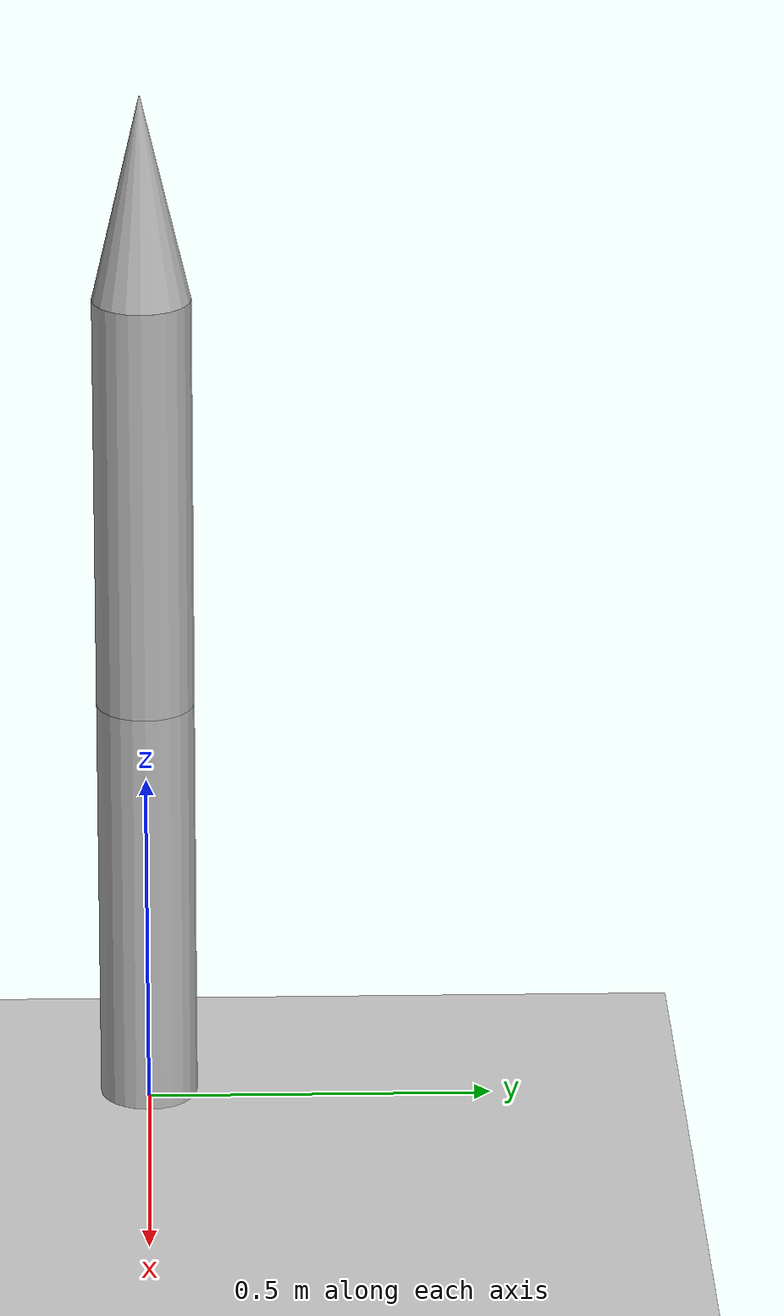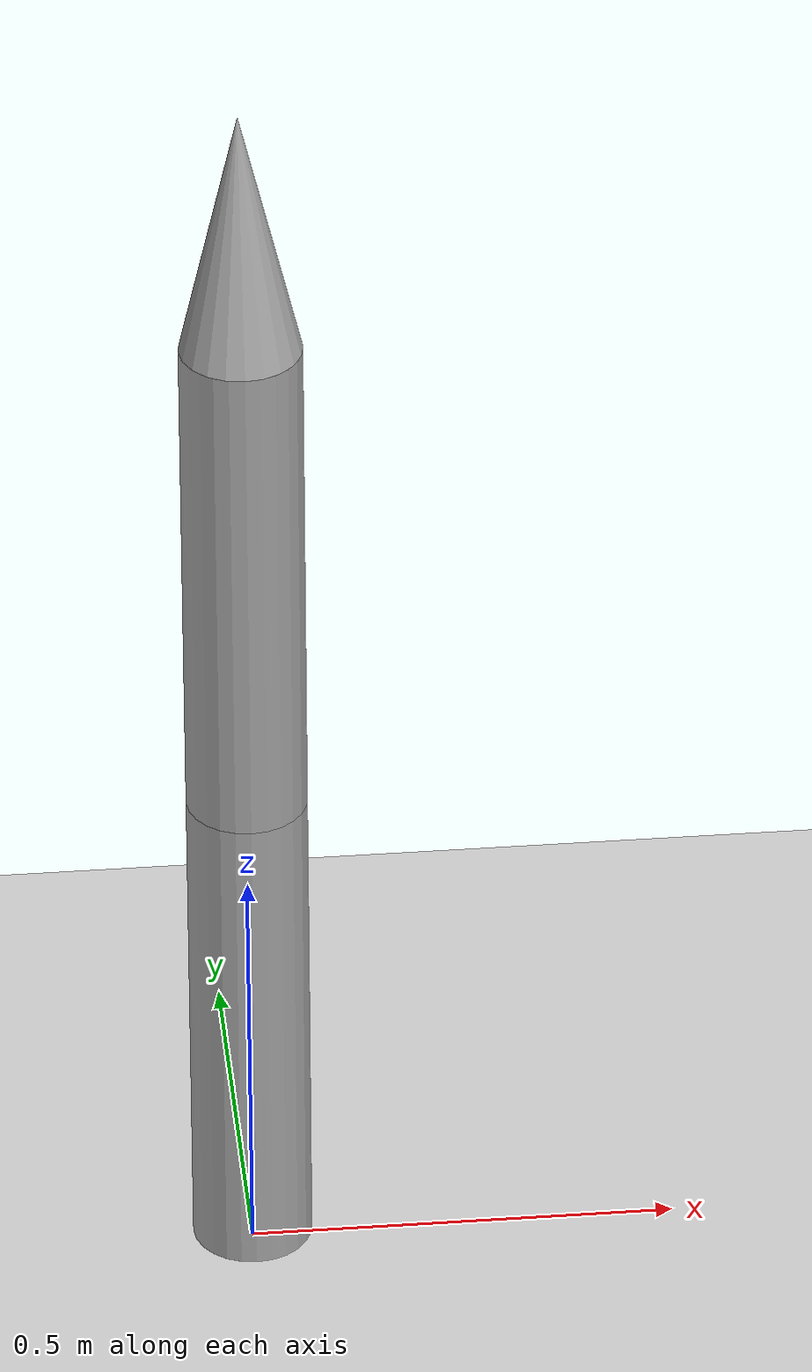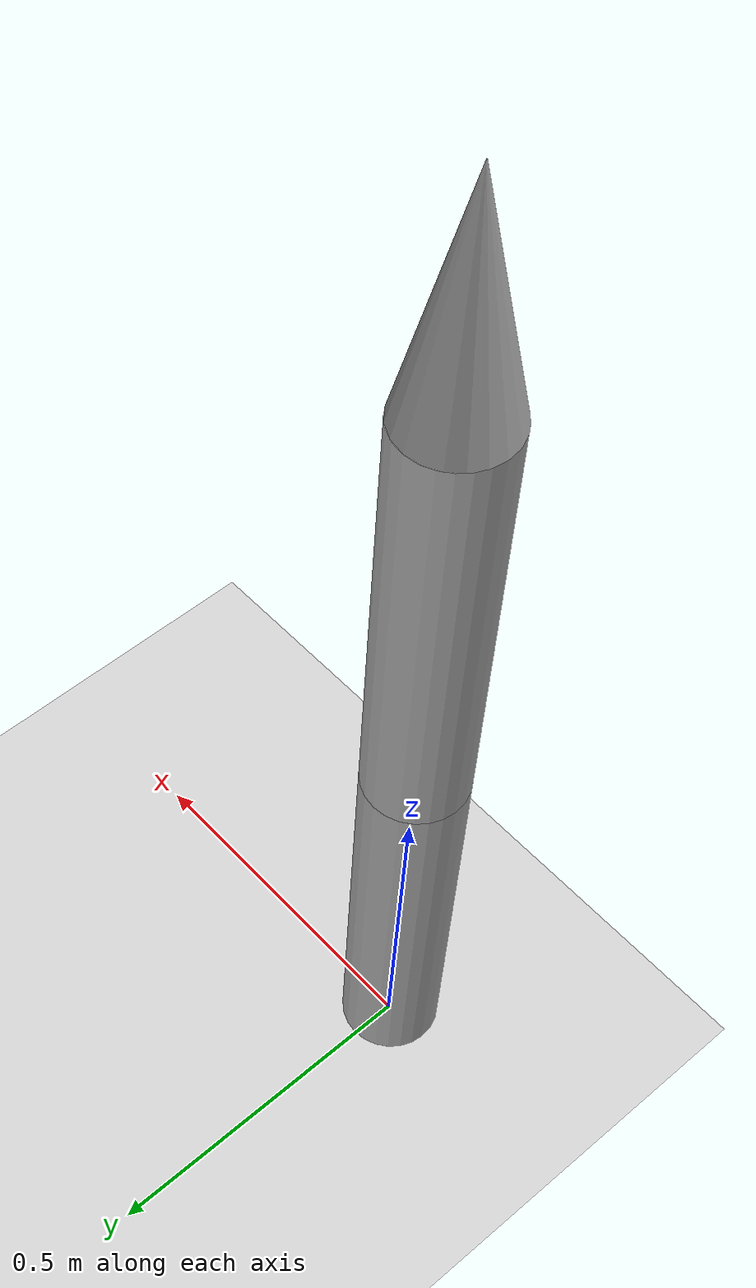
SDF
<?xml version="1.0" ?>
<sdf version="1.9">
  <world name="default">
    <include>
      <uri>model://rocket_base</uri>
      <name>rocket_base</name>
      <pose>0 0 0.315 0 0 0</pose>
    </include>

    <include>
      <uri>model://rocket_cone</uri>
      <name>rocket_cone</name>
      <pose>0 0 1.3794 0 0 0</pose>
    </include>

    <include>
      <uri>model://container</uri>
      <name>container</name>
      <pose>0 0 0.9 0 0 0</pose>
    </include>

    <include>
      <uri>model://pocket_qube</uri>
      <name>pocket_qube</name>
      <pose>0 0 0.9 0 0 0</pose>
    </include>

    <physics type="ode">
      <max_step_size>0.001</max_step_size>
      <real_time_factor>1.0</real_time_factor>
      <real_time_update_rate>1000</real_time_update_rate>
    </physics>
    <gravity>0 0 -9.8</gravity>
    <magnetic_field>6e-06 2.3e-05 -4.2e-05</magnetic_field>
    <atmosphere type="adiabatic"/>
    <scene>
      <grid>false</grid>
      <ambient>0.4 0.4 0.4 1</ambient>
      <background>0.7 0.7 0.7 1</background>
      <shadows>true</shadows>
    </scene>
    <model name="ground_plane">
      <static>true</static>
      <link name="link">
        <collision name="collision">
          <geometry>
            <plane>
              <normal>0 0 1</normal>
              <size>1 1</size>
            </plane>
          </geometry>
          <surface>
            <friction>
              <ode/>
            </friction>
            <bounce/>
            <contact/>
          </surface>
        </collision>
        <visual name="visual">
          <geometry>
            <plane>
              <normal>0 0 1</normal>
              <size>100 100</size>
            </plane>
          </geometry>
          <material>
            <ambient>0.8 0.8 0.8 1</ambient>
            <diffuse>0.8 0.8 0.8 1</diffuse>
            <specular>0.8 0.8 0.8 1</specular>
          </material>
        </visual>
        <pose>0 0 0 0 -0 0</pose>
        <inertial>
          <pose>0 0 0 0 -0 0</pose>
          <mass>1</mass>
          <inertia>
            <ixx>1</ixx>
            <ixy>0</ixy>
            <ixz>0</ixz>
            <iyy>1</iyy>
            <iyz>0</iyz>
            <izz>1</izz>
          </inertia>
        </inertial>
        <enable_wind>false</enable_wind>
      </link>
      <pose>0 0 0 0 -0 0</pose>
      <self_collide>false</self_collide>
    </model>
    <light name="sunUTC" type="directional">
      <pose>0 0 500 0 -0 0</pose>
      <cast_shadows>true</cast_shadows>
      <intensity>1</intensity>
      <direction>0.001 0.625 -0.78</direction>
      <diffuse>0.904 0.904 0.904 1</diffuse>
      <specular>0.271 0.271 0.271 1</specular>
      <attenuation>
        <range>2000</range>
        <linear>0</linear>
        <constant>1</constant>
        <quadratic>0</quadratic>
      </attenuation>
      <spot>
        <inner_angle>0</inner_angle>
        <outer_angle>0</outer_angle>
        <falloff>0</falloff>
      </spot>
    </light>
    <spherical_coordinates>
      <surface_model>EARTH_WGS84</surface_model>
      <world_frame_orientation>ENU</world_frame_orientation>
      <latitude_deg>47.397971057728974</latitude_deg>
      <longitude_deg> 8.546163739800146</longitude_deg>
      <elevation>0</elevation>
    </spherical_coordinates>
  </world>
</sdf>

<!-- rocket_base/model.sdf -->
<sdf version='1.8'>
  <model name='rocket_base'>
    <pose>0 0 0 0 0 0</pose>
    <link name='rocket_base_link'>
      <pose>0 0 0 0 0 0</pose>
      <inertial>
       <pose>0 0 0 0 0 0</pose>
       <mass>1.899</mass>
       <inertia>
         <ixx>0.14212</ixx>
         <ixy>0</ixy>
         <ixz>0</ixz>
         <iyy>0.14212</iyy>
         <iyz>0</iyz>
         <izz>0.00047</izz>
       </inertia>
      </inertial>
      <velocity_decay>
        <linear>0.01</linear>
        <angular>0.005</angular>
      </velocity_decay>
      <collision name='rocket_base_collision'>
        <pose>0 0 0 0 0 0</pose>
        <geometry>
          <cylinder>
            <radius>0.07036</radius>
            <length>0.6096</length>
          </cylinder>
        </geometry>
        <surface>
          <contact>
            <ode>
              <kp>1e6</kp>
              <kd>100.0</kd>
              <max_vel>0.01</max_vel>
              <min_depth>0.001</min_depth>
            </ode>
          </contact>
        </surface>
      </collision>
      <visual name='rocket_base_visual'>
        <pose>0 0 0 0 0 0</pose>
        <geometry>
          <cylinder>
            <radius>0.07036</radius>
            <length>0.6096</length>
          </cylinder>
       </geometry>
      </visual>
    </link>

    <link name='rocket_payload_link'>
      <pose>0 0 0.6096 0 0 0</pose>
      <inertial>
        <pose>0 0 0 0 0 0</pose>
        <mass>0.425</mass>
        <inertia>
          <ixx>0.01463</ixx>
          <ixy>0</ixy>
          <ixz>0</ixz>
          <iyy>0.01463</iyy>
          <iyz>0</iyz>
          <izz>0.001992</izz>
        </inertia>
      </inertial>
      <collision name='rocket_payload_collsion_wall_0'>
        <pose>0 0.068429 0 0 0 0</pose>
        <geometry>
          <box>
            <size>0.140716 0.003858 0.6096</size>
          </box>
        </geometry>
        <surface>
          <contact>
            <ode>
              <kp>1e6</kp>
              <kd>100.0</kd>
              <max_vel>0.01</max_vel>
              <min_depth>0.001</min_depth>
            </ode>
          </contact>
        </surface>
      </collision>
      <collision name='rocket_payload_collsion_wall_1'>
        <pose>-0.068429 0 0 0 0 1.57</pose>
        <geometry>
          <box>
            <size>0.140716 0.003858 0.6096</size>
          </box>
        </geometry>
        <surface>
          <contact>
            <ode>
              <kp>1e6</kp>
              <kd>100.0</kd>
              <max_vel>0.01</max_vel>
              <min_depth>0.001</min_depth>
            </ode>
          </contact>
        </surface>
      </collision>
      <collision name='rocket_payload_collsion_wall_2'>
        <pose>0 -0.068429 0 0 0 0</pose>
        <geometry>
          <box>
            <size>0.140716 0.003858 0.6096</size>
          </box>
        </geometry>
        <surface>
          <contact>
            <ode>
              <kp>1e6</kp>
              <kd>100.0</kd>
              <max_vel>0.01</max_vel>
              <min_depth>0.001</min_depth>
            </ode>
          </contact>
        </surface>
      </collision>
      <collision name='rocket_payload_collsion_wall_3'>
        <pose>0.068429 0 0 0 0 1.57</pose>
        <geometry>
          <box>
            <size>0.140716 0.003858 0.6096</size>
          </box>
        </geometry>
        <surface>
          <contact>
            <ode>
              <kp>1e6</kp>
              <kd>100.0</kd>
              <max_vel>0.01</max_vel>
              <min_depth>0.001</min_depth>
            </ode>
          </contact>
        </surface>
      </collision>
      <visual name='rocket_payload_visual'>
        <pose>0 0 0 0 0 0</pose>
        <geometry>
          <!-- use a hollow mesh in the future -->
          <cylinder>
            <radius>0.07036</radius>
            <length>0.6096</length>
          </cylinder>
        </geometry>
      </visual>
    </link>

    <joint name='rocket_base_payload_joint' type='fixed'>
      <parent>rocket_base_link</parent>
      <child>rocket_payload_link</child>
    </joint>

    <plugin
      filename="gz-sim-detachable-joint-system"
      name="gz::sim::systems::DetachableJoint">
      <parent_link>rocket_payload_link</parent_link>
      <child_model>rocket_cone</child_model>
      <child_link>rocket_cone_link</child_link>
      <detach_topic>/rocket/cone/detach</detach_topic>
    </plugin>

    <plugin
      filename="gz-sim-detachable-joint-system"
      name="gz::sim::systems::DetachableJoint">
      <parent_link>rocket_payload_link</parent_link>
      <child_model>container</child_model>
      <child_link>container_link</child_link>
      <detach_topic>/rocket/container/detach</detach_topic>
    </plugin>

    <plugin
      filename="gz-sim-pose-publisher-system"
      name="gz::sim::systems::PosePublisher">
      <publish_model_pose>true</publish_model_pose>
      <publish_link_pose>false</publish_link_pose>
      <use_pose_vector_msg>false</use_pose_vector_msg>
      <update_frequency>50</update_frequency>
    </plugin>

    <plugin filename="libJ425R.so" name="cansat::J425R"/>
    <plugin filename="libRocketRecovery.so" name="cansat::RocketRecovery"/>
  </model>
</sdf>

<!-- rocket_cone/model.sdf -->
<sdf version='1.5'>
  <model name="rocket_cone">
    <link name='rocket_cone_link'>
      <pose>0 0 0 0 0 0</pose>
      <inertial>
        <pose>0 0 0 0 0 0</pose>
        <mass>0.1</mass>
        <inertia>
          <ixx>0.001</ixx>
          <ixy>0</ixy>
          <ixz>0</ixz>
          <iyy>0.001</iyy>
          <iyz>0</iyz>
          <izz>0.001</izz>
        </inertia>
      </inertial>
      <velocity_decay>
        <linear>0.01</linear>
        <angular>0.005</angular>
      </velocity_decay>
      <collision name="rocket_cone_collision">
        <geometry>
          <cone>
            <radius>0.07036</radius>
            <length>0.3</length>
          </cone>
        </geometry>
      </collision>
      <visual name="rocket_cone_visual">
        <geometry>
          <cone>
            <radius>0.07036</radius>
            <length>0.3</length>
          </cone>
        </geometry>
      </visual>
    </link>
  </model>
</sdf>

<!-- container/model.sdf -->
<sdf version='1.8'>
  <model name="container">
    <link name="container_link">
      <pose>0 0 0 0 0 0</pose>
      <inertial>
        <pose>0 0 0 0 0 0</pose>
        <mass>0.6</mass>
        <inertia>
          <ixx>0.002449</ixx>
          <ixy>0.0</ixy>
          <ixz>0.0</ixz>
          <iyy>0.002449</iyy>
          <iyz>0.0</iyz>
          <izz>0.001287</izz>
        </inertia>
      </inertial>
      <velocity_decay>
        <linear>0.01</linear>
        <angular>0.005</angular>
      </velocity_decay>
      <collision name="container_collision_wall_0">
        <pose>0.0553647 0 0 0 0 1.57</pose>
        <geometry>
          <box>
            <size>0.07 0.01 0.19</size>
          </box>
        </geometry>
        <surface>
          <contact>
            <ode>
              <kp>1e6</kp>
              <kd>100.0</kd>
              <max_vel>0.01</max_vel>
              <min_depth>0.001</min_depth>
            </ode>
          </contact>
        </surface>
      </collision>
      <collision name="container_collision_wall_1">
        <pose>0 0.0553647 0 0 0 0</pose>
        <geometry>
          <box>
            <size>0.07 0.01 0.19</size>
          </box>
        </geometry>
        <surface>
          <contact>
            <ode>
              <kp>1e6</kp>
              <kd>100.0</kd>
              <max_vel>0.01</max_vel>
              <min_depth>0.001</min_depth>
            </ode>
          </contact>
        </surface>
      </collision>
      <collision name="container_collision_wall_2">
        <pose>-0.0553647 0 0 0 0 1.57</pose>
        <geometry>
          <box>
            <size>0.07 0.01 0.19</size>
          </box>
        </geometry>
        <surface>
          <contact>
            <ode>
              <kp>1e6</kp>
              <kd>100.0</kd>
              <max_vel>0.01</max_vel>
              <min_depth>0.001</min_depth>
            </ode>
          </contact>
        </surface>
      </collision>
      <collision name="container_collision_wall_3">
        <pose>0 -0.0553647 0 0 0 0</pose>
        <geometry>
          <box>
            <size>0.07 0.01 0.19</size>
          </box>
        </geometry>
        <surface>
          <contact>
            <ode>
              <kp>1e6</kp>
              <kd>100.0</kd>
              <max_vel>0.01</max_vel>
              <min_depth>0.001</min_depth>
            </ode>
          </contact>
        </surface>
      </collision>
      <visual name="container_visual">
        <geometry>
          <cylinder>
            <radius>0.0655</radius>
            <length>0.19</length>
          </cylinder>
        </geometry>
        <material>
          <ambient>0.175 0.175 0.175 1.0</ambient>
          <diffuse>0.175 0.175 0.175 1.0</diffuse>
        </material>
      </visual>

      <sensor name="barometer" type="air_pressure">
        <always_on>true</always_on>
        <update_rate>20</update_rate>
        <topic>/container/air_pressure</topic>
        <air_pressure>
          <pressure>
            <noise type="gaussian">
              <mean>0.0</mean>
              <stddev>1.0</stddev> <!-- 1 Pa resolution noise -->
            </noise>
          </pressure>
        </air_pressure>
      </sensor>
      <sensor name="altimeter" type="altimeter">
        <always_on>true</always_on>
        <update_rate>20</update_rate>
        <topic>/container/altimeter</topic>
        <altimeter>
          <vertical_position>
            <noise type="gaussian">
              <mean>0.0</mean>
              <stddev>0.1</stddev> <!-- 0.1m resolution noise -->
            </noise>
          </vertical_position>
        </altimeter>
      </sensor>
    </link>

    <plugin
      filename="gz-sim-pose-publisher-system"
      name="gz::sim::systems::PosePublisher">
      <publish_model_pose>true</publish_model_pose>
      <publish_link_pose>false</publish_link_pose>
      <use_pose_vector_msg>false</use_pose_vector_msg>
      <update_frequency>50</update_frequency>
    </plugin>

    <plugin
      filename="gz-sim-detachable-joint-system"
      name="gz::sim::systems::DetachableJoint">
      <parent_link>container_link</parent_link>
      <child_model>pocket_qube</child_model>
      <child_link>pocket_qube_link</child_link>
      <detach_topic>/rocket/pocket_qube/detach</detach_topic>
    </plugin>

    <plugin filename="libPayloadEjection.so" name="cansat::PayloadEjection">
      <payload_link_name>container_link</payload_link_name>
      <detach_topic>/rocket/container/detach</detach_topic>
      <trigger_mode>apogee</trigger_mode>
      <min_altitude>20.0</min_altitude>
      <apogee_drop_offset>1.0</apogee_drop_offset>
      <force>45.75</force>
      <duration>0.05</duration>
    </plugin>

    <plugin filename="libParachute.so" name="cansat::Parachute">
      <link_name>container_link</link_name>
      <trigger_mode>apogee</trigger_mode>
      <apogee_drop_offset>1.0</apogee_drop_offset>
      <cd>0.082</cd>
      <area>0.196</area> <!-- 50cm canopy -->
      <tether_offset>0.15</tether_offset> <!-- above CoM -->
      <angular_damping>0.95</angular_damping>
    </plugin>
  </model>
</sdf>

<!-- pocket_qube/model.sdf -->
<sdf version='1.8'>
  <model name="pocket_qube">
    <link name="pocket_qube_link">
      <pose>0 0 0 0 0 0</pose>
      <inertial>
        <pose>0 0 0 0 0 0</pose>
        <mass>0.315</mass>
        <inertia>
          <ixx>0.0002573</ixx>
          <ixy>0.0</ixy>
          <ixz>0.0</ixz>
          <iyy>0.0002573</iyy>
          <iyz>0.0</iyz>
          <izz>0.0002573</izz>
        </inertia>
      </inertial>
      <velocity_decay>
        <linear>0.01</linear>
        <angular>0.005</angular>
      </velocity_decay>
      <collision name="pocket_qube_collision">
        <geometry>
          <box>
            <size>0.07 0.07 0.07</size>
          </box>
        </geometry>
        <surface>
          <contact>
            <ode>
              <kp>1e6</kp>
              <kd>100.0</kd>
              <max_vel>0.01</max_vel>
              <min_depth>0.001</min_depth>
            </ode>
          </contact>
        </surface>
      </collision>
      <visual name="pocket_qube_visual">
        <!-- use mesh -->
        <geometry>
          <box>
            <size>0.07 0.07 0.07</size>
          </box>
        </geometry>
        <material>
          <ambient>0.175 0.175 0.175 1.0</ambient>
          <diffuse>0.175 0.175 0.175 1.0</diffuse>
        </material>
      </visual>

      <sensor name="barometer" type="air_pressure">
        <always_on>true</always_on>
        <update_rate>20</update_rate>
        <topic>/pocket_qube/air_pressure</topic>
        <air_pressure>
          <pressure>
            <noise type="gaussian">
              <mean>0.0</mean>
              <stddev>1.0</stddev> <!-- 1 Pa resolution noise -->
            </noise>
          </pressure>
        </air_pressure>
      </sensor>
      <sensor name="altimeter" type="altimeter">
        <always_on>true</always_on>
        <update_rate>20</update_rate>
        <topic>/pocket_qube/altimeter</topic>
        <altimeter>
          <vertical_position>
            <noise type="gaussian">
              <mean>0.0</mean>
              <stddev>0.1</stddev> <!-- 0.1m resolution noise -->
            </noise>
          </vertical_position>
        </altimeter>
      </sensor>
    </link>

    <plugin
      filename="gz-sim-pose-publisher-system"
      name="gz::sim::systems::PosePublisher">
      <publish_model_pose>true</publish_model_pose>
      <publish_link_pose>false</publish_link_pose>
      <use_pose_vector_msg>false</use_pose_vector_msg>
      <update_frequency>50</update_frequency>
    </plugin>

    <plugin filename="libParachute.so" name="cansat::Parachute">
      <link_name>pocket_qube_link</link_name>
      <trigger_mode>manual</trigger_mode>
      <apogee_drop_offset>1.0</apogee_drop_offset>
      <cd>1.61</cd>
      <area>0.196</area> <!-- 50cm canopy -->
      <tether_offset>0.15</tether_offset> <!-- above CoM -->
      <angular_damping>0.0005</angular_damping>
    </plugin>

    <plugin filename="libPayloadEjection.so" name="cansat::PayloadEjection">
      <payload_link_name>pocket_qube_link</payload_link_name>
      <detach_topic>/rocket/pocket_qube/detach</detach_topic>
      <trigger_mode>apogee</trigger_mode>
      <min_altitude>20.0</min_altitude>
      <apogee_drop_offset>20.0</apogee_drop_offset>
      <force>3.0</force>
      <duration>0.05</duration>
    </plugin>
  </model>
</sdf>
